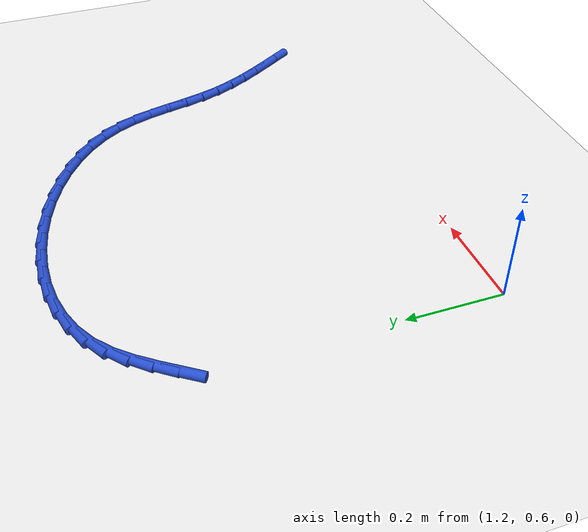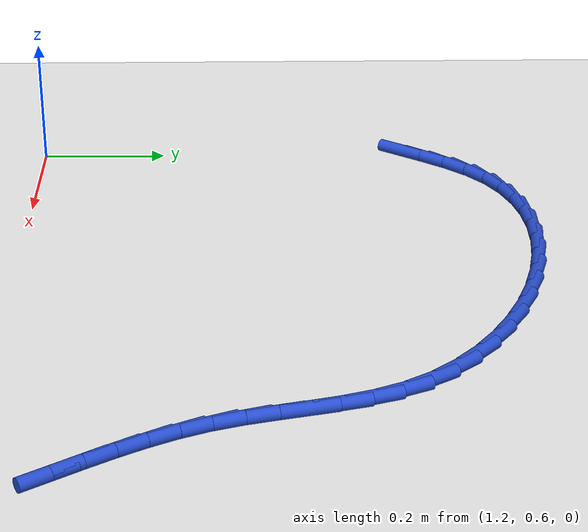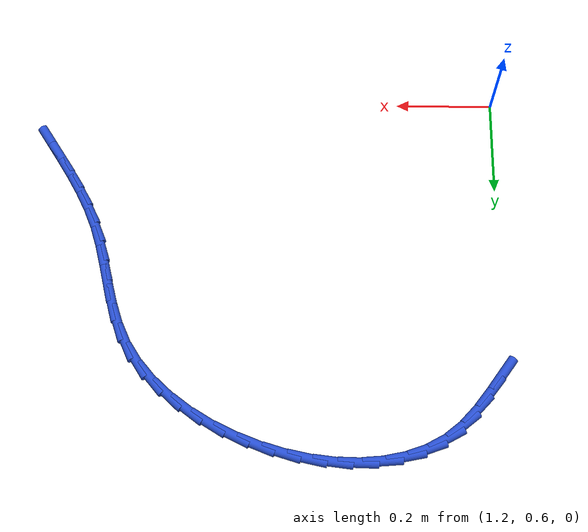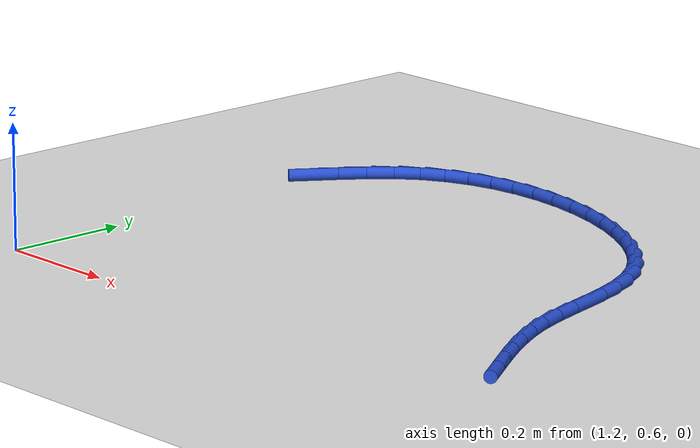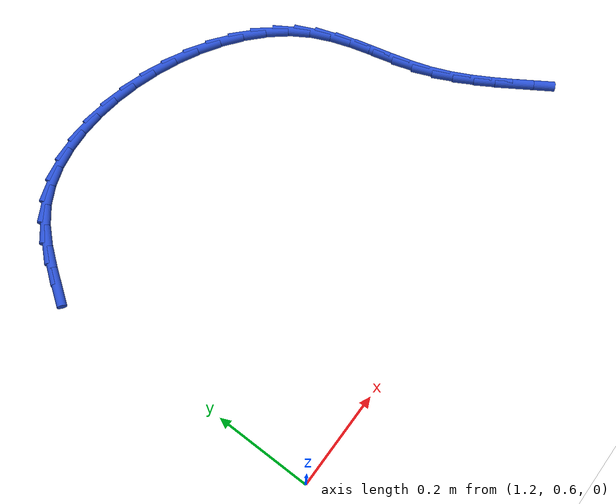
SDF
<sdf version="1.6">
 <world name="default">
  <model name="ground_plane">
   <static>1</static>
   <link name="link">
    <collision name="collision">
     <geometry><plane><normal>0 0 1</normal><size>100 100</size></plane></geometry>
     <surface><friction><ode><mu>100</mu><mu2>50</mu2></ode></friction></surface>
    </collision>
    <visual name="visual">
     <cast_shadows>0</cast_shadows>
     <geometry><plane><normal>0 0 1</normal><size>100 100</size></plane></geometry>
     <material>
      <script><uri>file://media/materials/scripts/gazebo.material</uri><name>Gazebo/WhiteGlow</name></script>
     </material>
    </visual>
   </link>
  </model>
  <model name="line">
   <link name="link_44">
    <pose>1.204462388740665 1.2043450255848815 0.01 0 1.57 0.9593256630030895</pose>
    <collision name="collision">
     <geometry><cylinder><radius>0.01</radius><length>0.08</length></cylinder></geometry>
    </collision>
    <visual name="visual">
     <material>
      <script><name>Gazebo/Blue</name><uri>file://media/materials/scripts/gazebo.material</uri></script>
     </material>
     <geometry><cylinder><radius>0.01</radius><length>0.08</length></cylinder></geometry>
    </visual>
   </link>
   <link name="link_45">
    <pose>1.2306582837165776 1.2417084752740883 0.01 0 1.57 0.9216330524843448</pose>
    <collision name="collision">
     <geometry><cylinder><radius>0.01</radius><length>0.08</length></cylinder></geometry>
    </collision>
    <visual name="visual">
     <material>
      <script><name>Gazebo/Blue</name><uri>file://media/materials/scripts/gazebo.material</uri></script>
     </material>
     <geometry><cylinder><radius>0.01</radius><length>0.08</length></cylinder></geometry>
    </visual>
   </link>
   <link name="link_46">
    <pose>1.2576271893634026 1.2772460166414241 0.01 0 1.57 0.8320853243066894</pose>
    <collision name="collision">
     <geometry><cylinder><radius>0.01</radius><length>0.08</length></cylinder></geometry>
    </collision>
    <visual name="visual">
     <material>
      <script><name>Gazebo/Blue</name><uri>file://media/materials/scripts/gazebo.material</uri></script>
     </material>
     <geometry><cylinder><radius>0.01</radius><length>0.08</length></cylinder></geometry>
    </visual>
   </link>
   <link name="link_47">
    <pose>1.286864618445405 1.3093493545500774 0.01 0 1.57 0.6868609556460089</pose>
    <collision name="collision">
     <geometry><cylinder><radius>0.01</radius><length>0.08</length></cylinder></geometry>
    </collision>
    <visual name="visual">
     <material>
      <script><name>Gazebo/Blue</name><uri>file://media/materials/scripts/gazebo.material</uri></script>
     </material>
     <geometry><cylinder><radius>0.01</radius><length>0.08</length></cylinder></geometry>
    </visual>
   </link>
   <link name="link_48">
    <pose>1.3198644207140238 1.3364115824981786 0.01 0 1.57 0.5103191789274998</pose>
    <collision name="collision">
     <geometry><cylinder><radius>0.01</radius><length>0.08</length></cylinder></geometry>
    </collision>
    <visual name="visual">
     <material>
      <script><name>Gazebo/Blue</name><uri>file://media/materials/scripts/gazebo.material</uri></script>
     </material>
     <geometry><cylinder><radius>0.01</radius><length>0.08</length></cylinder></geometry>
    </visual>
   </link>
   <link name="link_49">
    <pose>1.3574002284757194 1.3574232956948902 0.01 0 1.57 0.34904825450279187</pose>
    <collision name="collision">
     <geometry><cylinder><radius>0.01</radius><length>0.08</length></cylinder></geometry>
    </collision>
    <visual name="visual">
     <material>
      <script><name>Gazebo/Blue</name><uri>file://media/materials/scripts/gazebo.material</uri></script>
     </material>
     <geometry><cylinder><radius>0.01</radius><length>0.08</length></cylinder></geometry>
    </visual>
   </link>
   <link name="link_50">
    <pose>1.3988701127188239 1.3725162728168745 0.01 0 1.57 0.20824848502652107</pose>
    <collision name="collision">
     <geometry><cylinder><radius>0.01</radius><length>0.08</length></cylinder></geometry>
    </collision>
    <visual name="visual">
     <material>
      <script><name>Gazebo/Blue</name><uri>file://media/materials/scripts/gazebo.material</uri></script>
     </material>
     <geometry><cylinder><radius>0.01</radius><length>0.08</length></cylinder></geometry>
    </visual>
   </link>
   <link name="link_51">
    <pose>1.4435172927375701 1.3819507595098002 0.01 0 1.57 0.08554469255284418</pose>
    <collision name="collision">
     <geometry><cylinder><radius>0.01</radius><length>0.08</length></cylinder></geometry>
    </collision>
    <visual name="visual">
     <material>
      <script><name>Gazebo/Blue</name><uri>file://media/materials/scripts/gazebo.material</uri></script>
     </material>
     <geometry><cylinder><radius>0.01</radius><length>0.08</length></cylinder></geometry>
    </visual>
   </link>
   <link name="link_52">
    <pose>1.4905849878261894 1.3859870014193345 0.01 0 1.57 -0.022604909702360565</pose>
    <collision name="collision">
     <geometry><cylinder><radius>0.01</radius><length>0.08</length></cylinder></geometry>
    </collision>
    <visual name="visual">
     <material>
      <script><name>Gazebo/Blue</name><uri>file://media/materials/scripts/gazebo.material</uri></script>
     </material>
     <geometry><cylinder><radius>0.01</radius><length>0.08</length></cylinder></geometry>
    </visual>
   </link>
   <link name="link_53">
    <pose>1.5393164172789136 1.3848852441911461 0.01 0 1.57 -0.11988378303092485</pose>
    <collision name="collision">
     <geometry><cylinder><radius>0.01</radius><length>0.08</length></cylinder></geometry>
    </collision>
    <visual name="visual">
     <material>
      <script><name>Gazebo/Blue</name><uri>file://media/materials/scripts/gazebo.material</uri></script>
     </material>
     <geometry><cylinder><radius>0.01</radius><length>0.08</length></cylinder></geometry>
    </visual>
   </link>
   <link name="link_54">
    <pose>1.5889548003899734 1.3789057334709018 0.01 0 1.57 -0.20971110903520798</pose>
    <collision name="collision">
     <geometry><cylinder><radius>0.01</radius><length>0.08</length></cylinder></geometry>
    </collision>
    <visual name="visual">
     <material>
      <script><name>Gazebo/Blue</name><uri>file://media/materials/scripts/gazebo.material</uri></script>
     </material>
     <geometry><cylinder><radius>0.01</radius><length>0.08</length></cylinder></geometry>
    </visual>
   </link>
   <link name="link_55">
    <pose>1.6387433564536023 1.368308714904271 0.01 0 1.57 -0.2951777173246071</pose>
    <collision name="collision">
     <geometry><cylinder><radius>0.01</radius><length>0.08</length></cylinder></geometry>
    </collision>
    <visual name="visual">
     <material>
      <script><name>Gazebo/Blue</name><uri>file://media/materials/scripts/gazebo.material</uri></script>
     </material>
     <geometry><cylinder><radius>0.01</radius><length>0.08</length></cylinder></geometry>
    </visual>
   </link>
   <link name="link_56">
    <pose>1.6879253047640304 1.353354434136921 0.01 0 1.57 -0.37913321990971155</pose>
    <collision name="collision">
     <geometry><cylinder><radius>0.01</radius><length>0.08</length></cylinder></geometry>
    </collision>
    <visual name="visual">
     <material>
      <script><name>Gazebo/Blue</name><uri>file://media/materials/scripts/gazebo.material</uri></script>
     </material>
     <geometry><cylinder><radius>0.01</radius><length>0.08</length></cylinder></geometry>
    </visual>
   </link>
   <link name="link_57">
    <pose>1.7357438646154904 1.33430313681452 0.01 0 1.57 -0.464327889590246</pose>
    <collision name="collision">
     <geometry><cylinder><radius>0.01</radius><length>0.08</length></cylinder></geometry>
    </collision>
    <visual name="visual">
     <material>
      <script><name>Gazebo/Blue</name><uri>file://media/materials/scripts/gazebo.material</uri></script>
     </material>
     <geometry><cylinder><radius>0.01</radius><length>0.08</length></cylinder></geometry>
    </visual>
   </link>
   <link name="link_58">
    <pose>1.7814422553022136 1.311415068582735 0.01 0 1.57 -0.5535657005975273</pose>
    <collision name="collision">
     <geometry><cylinder><radius>0.01</radius><length>0.08</length></cylinder></geometry>
    </collision>
    <visual name="visual">
     <material>
      <script><name>Gazebo/Blue</name><uri>file://media/materials/scripts/gazebo.material</uri></script>
     </material>
     <geometry><cylinder><radius>0.01</radius><length>0.08</length></cylinder></geometry>
    </visual>
   </link>
   <link name="link_59">
    <pose>1.824263696118432 1.2849504750872356 0.01 0 1.57 -0.6498415488152488</pose>
    <collision name="collision">
     <geometry><cylinder><radius>0.01</radius><length>0.08</length></cylinder></geometry>
    </collision>
    <visual name="visual">
     <material>
      <script><name>Gazebo/Blue</name><uri>file://media/materials/scripts/gazebo.material</uri></script>
     </material>
     <geometry><cylinder><radius>0.01</radius><length>0.08</length></cylinder></geometry>
    </visual>
   </link>
   <link name="link_60">
    <pose>1.8634514063583778 1.2551696019736889 0.01 0 1.57 -0.7564224979733709</pose>
    <collision name="collision">
     <geometry><cylinder><radius>0.01</radius><length>0.08</length></cylinder></geometry>
    </collision>
    <visual name="visual">
     <material>
      <script><name>Gazebo/Blue</name><uri>file://media/materials/scripts/gazebo.material</uri></script>
     </material>
     <geometry><cylinder><radius>0.01</radius><length>0.08</length></cylinder></geometry>
    </visual>
   </link>
   <link name="link_61">
    <pose>1.8982486053162817 1.2223326948877635 0.01 0 1.57 -0.8767873375099471</pose>
    <collision name="collision">
     <geometry><cylinder><radius>0.01</radius><length>0.08</length></cylinder></geometry>
    </collision>
    <visual name="visual">
     <material>
      <script><name>Gazebo/Blue</name><uri>file://media/materials/scripts/gazebo.material</uri></script>
     </material>
     <geometry><cylinder><radius>0.01</radius><length>0.08</length></cylinder></geometry>
    </visual>
   </link>
   <link name="link_62">
    <pose>1.9278985122863759 1.1866999994751266 0.01 0 1.57 -1.0140951849079383</pose>
    <collision name="collision">
     <geometry><cylinder><radius>0.01</radius><length>0.08</length></cylinder></geometry>
    </collision>
    <visual name="visual">
     <material>
      <script><name>Gazebo/Blue</name><uri>file://media/materials/scripts/gazebo.material</uri></script>
     </material>
     <geometry><cylinder><radius>0.01</radius><length>0.08</length></cylinder></geometry>
    </visual>
   </link>
   <link name="link_63">
    <pose>1.9516522587270428 1.148533000109518 0.01 0 1.57 -1.152823407134523</pose>
    <collision name="collision">
     <geometry><cylinder><radius>0.01</radius><length>0.08</length></cylinder></geometry>
    </collision>
    <visual name="visual">
     <material>
      <script><name>Gazebo/Blue</name><uri>file://media/materials/scripts/gazebo.material</uri></script>
     </material>
     <geometry><cylinder><radius>0.01</radius><length>0.08</length></cylinder></geometry>
    </visual>
   </link>
   <link name="link_64">
    <pose>1.969557921998301 1.1082179509799934 0.01 0 1.57 -1.2571346984092242</pose>
    <collision name="collision">
     <geometry><cylinder><radius>0.01</radius><length>0.08</length></cylinder></geometry>
    </collision>
    <visual name="visual">
     <material>
      <script><name>Gazebo/Blue</name><uri>file://media/materials/scripts/gazebo.material</uri></script>
     </material>
     <geometry><cylinder><radius>0.01</radius><length>0.08</length></cylinder></geometry>
    </visual>
   </link>
   <link name="link_65">
    <pose>1.9831318101678033 1.0663709724106336 0.01 0 1.57 -1.3207150122558236</pose>
    <collision name="collision">
     <geometry><cylinder><radius>0.01</radius><length>0.08</length></cylinder></geometry>
    </collision>
    <visual name="visual">
     <material>
      <script><name>Gazebo/Blue</name><uri>file://media/materials/scripts/gazebo.material</uri></script>
     </material>
     <geometry><cylinder><radius>0.01</radius><length>0.08</length></cylinder></geometry>
    </visual>
   </link>
   <link name="link_66">
    <pose>1.9940483244339688 1.0236329357791185 0.01 0 1.57 -1.3437063531771798</pose>
    <collision name="collision">
     <geometry><cylinder><radius>0.01</radius><length>0.08</length></cylinder></geometry>
    </collision>
    <visual name="visual">
     <material>
      <script><name>Gazebo/Blue</name><uri>file://media/materials/scripts/gazebo.material</uri></script>
     </material>
     <geometry><cylinder><radius>0.01</radius><length>0.08</length></cylinder></geometry>
    </visual>
   </link>
   <link name="link_67">
    <pose>2.0039818659952173 0.9806447124631309 0.01 0 1.57 -1.3263571677263284</pose>
    <collision name="collision">
     <geometry><cylinder><radius>0.01</radius><length>0.08</length></cylinder></geometry>
    </collision>
    <visual name="visual">
     <material>
      <script><name>Gazebo/Blue</name><uri>file://media/materials/scripts/gazebo.material</uri></script>
     </material>
     <geometry><cylinder><radius>0.01</radius><length>0.08</length></cylinder></geometry>
    </visual>
   </link>
   <link name="link_68">
    <pose>2.014606836049967 0.9380471738403512 0.01 0 1.57 -1.2679081254345785</pose>
    <collision name="collision">
     <geometry><cylinder><radius>0.01</radius><length>0.08</length></cylinder></geometry>
    </collision>
    <visual name="visual">
     <material>
      <script><name>Gazebo/Blue</name><uri>file://media/materials/scripts/gazebo.material</uri></script>
     </material>
     <geometry><cylinder><radius>0.01</radius><length>0.08</length></cylinder></geometry>
    </visual>
   </link>
   <link name="link_69">
    <pose>2.0275964998101252 0.89648073643125 0.01 0 1.57 -1.1821190737814526</pose>
    <collision name="collision">
     <geometry><cylinder><radius>0.01</radius><length>0.08</length></cylinder></geometry>
    </collision>
    <visual name="visual">
     <material>
      <script><name>Gazebo/Blue</name><uri>file://media/materials/scripts/gazebo.material</uri></script>
     </material>
     <geometry><cylinder><radius>0.01</radius><length>0.08</length></cylinder></geometry>
    </visual>
   </link>
   <link name="link_70">
    <pose>2.044031088809471 0.8563483617851805 0.01 0 1.57 -1.1084543636718092</pose>
    <collision name="collision">
     <geometry><cylinder><radius>0.01</radius><length>0.08</length></cylinder></geometry>
    </collision>
    <visual name="visual">
     <material>
      <script><name>Gazebo/Blue</name><uri>file://media/materials/scripts/gazebo.material</uri></script>
     </material>
     <geometry><cylinder><radius>0.01</radius><length>0.08</length></cylinder></geometry>
    </visual>
   </link>
   <link name="link_71">
    <pose>2.0634281408960753 0.8174272976047241 0.01 0 1.57 -1.0538577785639751</pose>
    <collision name="collision">
     <geometry><cylinder><radius>0.01</radius><length>0.08</length></cylinder></geometry>
    </collision>
    <visual name="visual">
     <material>
      <script><name>Gazebo/Blue</name><uri>file://media/materials/scripts/gazebo.material</uri></script>
     </material>
     <geometry><cylinder><radius>0.01</radius><length>0.08</length></cylinder></geometry>
    </visual>
   </link>
   <link name="link_72">
    <pose>2.085050820488224 0.779392938632588 0.01 0 1.57 -1.0181427933414056</pose>
    <collision name="collision">
     <geometry><cylinder><radius>0.01</radius><length>0.08</length></cylinder></geometry>
    </collision>
    <visual name="visual">
     <material>
      <script><name>Gazebo/Blue</name><uri>file://media/materials/scripts/gazebo.material</uri></script>
     </material>
     <geometry><cylinder><radius>0.01</radius><length>0.08</length></cylinder></geometry>
    </visual>
   </link>
   <link name="link_73">
    <pose>2.1081622920042045 0.7419206796114794 0.01 0 1.57 -1.000851249320041</pose>
    <collision name="collision">
     <geometry><cylinder><radius>0.01</radius><length>0.08</length></cylinder></geometry>
    </collision>
    <visual name="visual">
     <material>
      <script><name>Gazebo/Blue</name><uri>file://media/materials/scripts/gazebo.material</uri></script>
     </material>
     <geometry><cylinder><radius>0.01</radius><length>0.08</length></cylinder></geometry>
    </visual>
   </link>
   <link name="link_74">
    <pose>2.132025719862304 0.704685915284105 0.01 0 1.57 -1.0016247844464188</pose>
    <collision name="collision">
     <geometry><cylinder><radius>0.01</radius><length>0.08</length></cylinder></geometry>
    </collision>
    <visual name="visual">
     <material>
      <script><name>Gazebo/Blue</name><uri>file://media/materials/scripts/gazebo.material</uri></script>
     </material>
     <geometry><cylinder><radius>0.01</radius><length>0.08</length></cylinder></geometry>
    </visual>
   </link>
  </model>
 </world>
</sdf>
